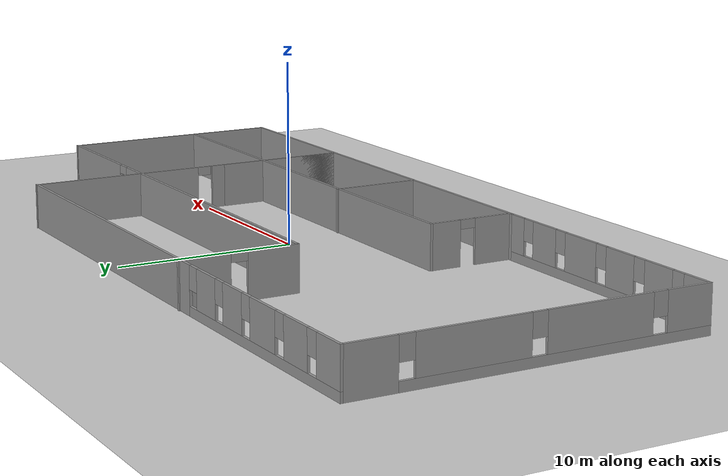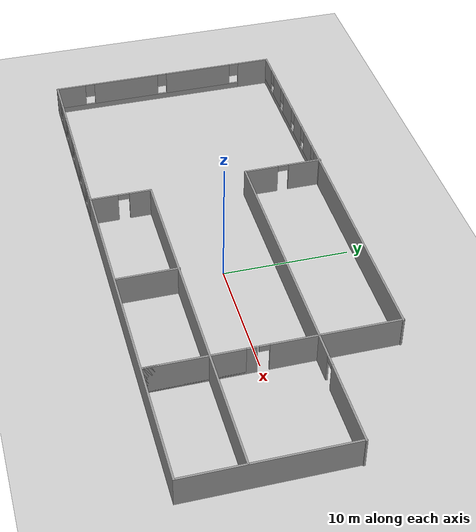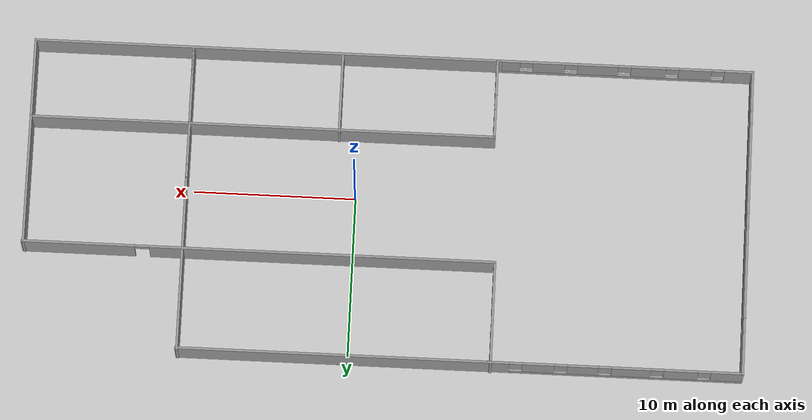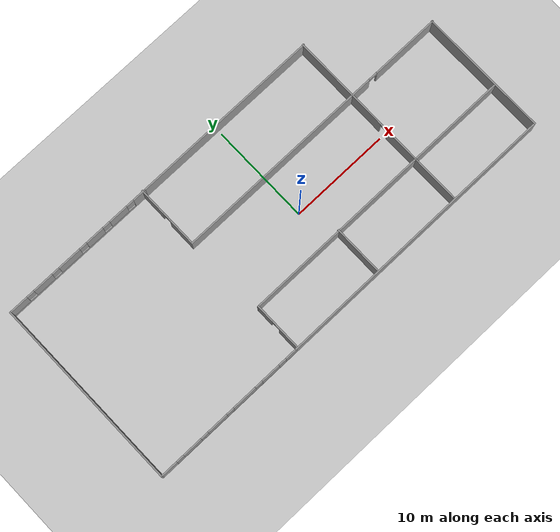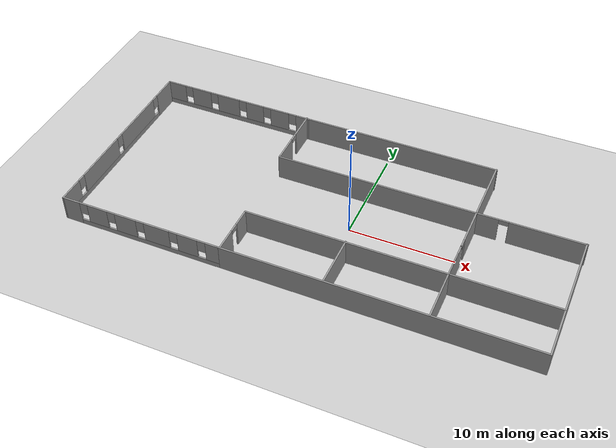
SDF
<sdf version="1.7">
 <world name="default">
  <light name="sun" type="directional">
   <pose>0 0 10 0 -0 0</pose>
   <diffuse>0.8 0.8 0.8 1</diffuse>
   <specular>0.2 0.2 0.2 1</specular>
   <attenuation>
    <range>1000</range>
    <constant>0.9</constant>
    <linear>0.01</linear>
    <quadratic>0.001</quadratic>
   </attenuation>
   <direction>-0.5 0.1 -0.9</direction>
   <spot><inner_angle>0</inner_angle><outer_angle>0</outer_angle><falloff>0</falloff></spot>
  </light>
  <model name="ground_plane">
   <static>1</static>
   <link name="link">
    <collision name="collision">
     <geometry><plane><normal>0 0 1</normal><size>100 100</size></plane></geometry>
     <surface>
      <contact><collide_bitmask>65535</collide_bitmask></contact>
      <friction><ode><mu>100</mu><mu2>50</mu2></ode></friction>
     </surface>
    </collision>
    <visual name="visual">
     <cast_shadows>0</cast_shadows>
     <geometry><plane><normal>0 0 1</normal><size>100 100</size></plane></geometry>
     <material>
      <script><uri>file://media/materials/scripts/gazebo.material</uri><name>Gazebo/Grey</name></script>
     </material>
    </visual>
   </link>
  </model>
  <gravity>0 0 -9.8</gravity>
  <magnetic_field>6e-06 2.3e-05 -4.2e-05</magnetic_field>
  <atmosphere type="adiabatic"/>
  <physics type="ode">
   <max_step_size>0.001</max_step_size>
   <real_time_factor>1</real_time_factor>
   <real_time_update_rate>1000</real_time_update_rate>
  </physics>
  <scene><ambient>0.4 0.4 0.4 1</ambient><background>0.7 0.7 0.7 1</background><shadows>1</shadows></scene>
  <spherical_coordinates>
   <surface_model>EARTH_WGS84</surface_model>
   <latitude_deg>0</latitude_deg>
   <longitude_deg>0</longitude_deg>
   <elevation>0</elevation>
   <heading_deg>0</heading_deg>
  </spherical_coordinates>
  <model name="first_tactic_model">
   <pose>-1.95828 0.93122 0 0 -0 0</pose>
   <link name="Wall_19">
    <collision name="Wall_19_Collision">
     <geometry><box><size>29 0.15 2.5</size></box></geometry>
     <pose>0 0 1.25 0 -0 0</pose>
    </collision>
    <visual name="Wall_19_Visual">
     <pose>0 0 1.25 0 -0 0</pose>
     <geometry><box><size>29 0.15 2.5</size></box></geometry>
     <material>
      <script><uri>file://media/materials/scripts/gazebo.material</uri><name>Gazebo/Grey</name></script>
      <ambient>1 1 1 1</ambient>
     </material>
     <meta><layer>0</layer></meta>
    </visual>
    <pose>7.7639 -9.58545 0 0 -0 3.14159</pose>
   </link>
   <link name="Wall_21">
    <pose>12.3851 -0.000286 0 0 -0 -1.5708</pose>
    <visual name="Wall_21_Visual_0">
     <pose>-4.62495 0 1.25 0 -0 0</pose>
     <geometry><box><size>10.0001 0.15 2.5</size></box></geometry>
     <material>
      <script><uri>file://media/materials/scripts/gazebo.material</uri><name>Gazebo/Grey</name></script>
      <ambient>1 1 1 1</ambient>
     </material>
     <meta><layer>0</layer></meta>
    </visual>
    <collision name="Wall_21_Collision_0">
     <geometry><box><size>10.0001 0.15 2.5</size></box></geometry>
     <pose>-4.62495 0 1.25 0 -0 0</pose>
    </collision>
    <visual name="Wall_21_Visual_1">
     <pose>5.45005 0 1.25 0 -0 0</pose>
     <geometry><box><size>8.3499 0.15 2.5</size></box></geometry>
     <material>
      <script><uri>file://media/materials/scripts/gazebo.material</uri><name>Gazebo/Grey</name></script>
      <ambient>1 1 1 1</ambient>
     </material>
     <meta><layer>0</layer></meta>
    </visual>
    <collision name="Wall_21_Collision_1">
     <geometry><box><size>8.3499 0.15 2.5</size></box></geometry>
     <pose>5.45005 0 1.25 0 -0 0</pose>
    </collision>
    <visual name="Wall_21_Visual_2">
     <pose>5.84998 0 1.25 0 -0 0</pose>
     <geometry><box><size>7.55004 0.15 2.5</size></box></geometry>
     <material>
      <script><uri>file://media/materials/scripts/gazebo.material</uri><name>Gazebo/Grey</name></script>
      <ambient>1 1 1 1</ambient>
     </material>
     <meta><layer>0</layer></meta>
    </visual>
    <collision name="Wall_21_Collision_2">
     <geometry><box><size>7.55004 0.15 2.5</size></box></geometry>
     <pose>5.84998 0 1.25 0 -0 0</pose>
    </collision>
    <visual name="Wall_21_Visual_3">
     <pose>0.77503 0 2.25 0 -0 0</pose>
     <geometry><box><size>0.799862 0.15 0.5</size></box></geometry>
     <material>
      <script><uri>file://media/materials/scripts/gazebo.material</uri><name>Gazebo/Grey</name></script>
      <ambient>1 1 1 1</ambient>
     </material>
     <meta><layer>0</layer></meta>
    </visual>
    <collision name="Wall_21_Collision_3">
     <geometry><box><size>0.799862 0.15 0.5</size></box></geometry>
     <pose>0.77503 0 2.25 0 -0 0</pose>
    </collision>
   </link>
   <link name="Wall_25">
    <pose>7.7111 3.23546 0 0 -0 0</pose>
    <visual name="Wall_25_Visual_0">
     <pose>-3.95283 0 1.25 0 -0 0</pose>
     <geometry><box><size>21.3443 0.15 2.5</size></box></geometry>
     <material>
      <script><uri>file://media/materials/scripts/gazebo.material</uri><name>Gazebo/Grey</name></script>
      <ambient>1 1 1 1</ambient>
     </material>
     <meta><layer>0</layer></meta>
    </visual>
    <collision name="Wall_25_Collision_0">
     <geometry><box><size>21.3443 0.15 2.5</size></box></geometry>
     <pose>-3.95283 0 1.25 0 -0 0</pose>
    </collision>
    <visual name="Wall_25_Visual_1">
     <pose>11.1222 0 1.25 0 -0 0</pose>
     <geometry><box><size>7.00566 0.15 2.5</size></box></geometry>
     <material>
      <script><uri>file://media/materials/scripts/gazebo.material</uri><name>Gazebo/Grey</name></script>
      <ambient>1 1 1 1</ambient>
     </material>
     <meta><layer>0</layer></meta>
    </visual>
    <collision name="Wall_25_Collision_1">
     <geometry><box><size>7.00566 0.15 2.5</size></box></geometry>
     <pose>11.1222 0 1.25 0 -0 0</pose>
    </collision>
    <visual name="Wall_25_Visual_2">
     <pose>7.16934 0 2.25 0 -0 0</pose>
     <geometry><box><size>0.9 0.15 0.5</size></box></geometry>
     <material>
      <script><uri>file://media/materials/scripts/gazebo.material</uri><name>Gazebo/Grey</name></script>
      <ambient>1 1 1 1</ambient>
     </material>
     <meta><layer>0</layer></meta>
    </visual>
    <collision name="Wall_25_Collision_2">
     <geometry><box><size>0.9 0.15 0.5</size></box></geometry>
     <pose>7.16934 0 2.25 0 -0 0</pose>
    </collision>
   </link>
   <link name="Wall_27">
    <collision name="Wall_27_Collision">
     <geometry><box><size>19.25 0.15 2.5</size></box></geometry>
     <pose>0 0 1.25 0 -0 0</pose>
    </collision>
    <visual name="Wall_27_Visual">
     <pose>0 0 1.25 0 -0 0</pose>
     <geometry><box><size>19.25 0.15 2.5</size></box></geometry>
     <material>
      <script><uri>file://media/materials/scripts/gazebo.material</uri><name>Gazebo/Grey</name></script>
      <ambient>1 1 1 1</ambient>
     </material>
     <meta><layer>0</layer></meta>
    </visual>
    <pose>2.8889 9.51455 0 0 -0 0</pose>
   </link>
   <link name="Wall_29">
    <collision name="Wall_29_Collision">
     <geometry><box><size>13 0.15 2.5</size></box></geometry>
     <pose>0 0 1.25 0 -0 0</pose>
    </collision>
    <visual name="Wall_29_Visual">
     <pose>0 0 1.25 0 -0 0</pose>
     <geometry><box><size>13 0.15 2.5</size></box></geometry>
     <material>
      <script><uri>file://media/materials/scripts/gazebo.material</uri><name>Gazebo/Grey</name></script>
      <ambient>1 1 1 1</ambient>
     </material>
     <meta><layer>0</layer></meta>
    </visual>
    <pose>22.1889 -3.16045 0 0 -0 1.5708</pose>
   </link>
   <link name="Wall_32">
    <collision name="Wall_32_Collision">
     <geometry><box><size>28.75 0.15 2.5</size></box></geometry>
     <pose>0 0 1.25 0 -0 0</pose>
    </collision>
    <visual name="Wall_32_Visual">
     <pose>0 0 1.25 0 -0 0</pose>
     <geometry><box><size>28.75 0.15 2.5</size></box></geometry>
     <material>
      <script><uri>file://media/materials/scripts/gazebo.material</uri><name>Gazebo/Grey</name></script>
      <ambient>1 1 1 1</ambient>
     </material>
     <meta><layer>0</layer></meta>
    </visual>
    <pose>7.84073 -4.70164 0 0 -0 3.14159</pose>
   </link>
   <link name="Wall_34">
    <pose>-14.4611 9.51455 0 0 -0 3.14159</pose>
    <visual name="Wall_34_Visual_0">
     <pose>-7.17951 0 1.25 0 -0 0</pose>
     <geometry><box><size>1.39099 0.15 2.5</size></box></geometry>
     <material>
      <script><uri>file://media/materials/scripts/gazebo.material</uri><name>Gazebo/Grey</name></script>
      <ambient>1 1 1 1</ambient>
     </material>
     <meta><layer>0</layer></meta>
    </visual>
    <collision name="Wall_34_Collision_0">
     <geometry><box><size>1.39099 0.15 2.5</size></box></geometry>
     <pose>-7.17951 0 1.25 0 -0 0</pose>
    </collision>
    <visual name="Wall_34_Visual_1">
     <pose>0.695494 0 0.25 0 -0 0</pose>
     <geometry><box><size>14.359 0.15 0.5</size></box></geometry>
     <material>
      <script><uri>file://media/materials/scripts/gazebo.material</uri><name>Gazebo/Grey</name></script>
      <ambient>1 1 1 1</ambient>
     </material>
     <meta><layer>0</layer></meta>
    </visual>
    <collision name="Wall_34_Collision_1">
     <geometry><box><size>14.359 0.15 0.5</size></box></geometry>
     <pose>0.695494 0 0.25 0 -0 0</pose>
    </collision>
    <visual name="Wall_34_Visual_2">
     <pose>-4.69963 0 1.5 0 -0 0</pose>
     <geometry><box><size>1.96876 0.15 2</size></box></geometry>
     <material>
      <script><uri>file://media/materials/scripts/gazebo.material</uri><name>Gazebo/Grey</name></script>
      <ambient>1 1 1 1</ambient>
     </material>
     <meta><layer>0</layer></meta>
    </visual>
    <collision name="Wall_34_Collision_2">
     <geometry><box><size>1.96876 0.15 2</size></box></geometry>
     <pose>-4.69963 0 1.5 0 -0 0</pose>
    </collision>
    <visual name="Wall_34_Visual_3">
     <pose>-1.96164 0 1.5 0 -0 0</pose>
     <geometry><box><size>1.90723 0.15 2</size></box></geometry>
     <material>
      <script><uri>file://media/materials/scripts/gazebo.material</uri><name>Gazebo/Grey</name></script>
      <ambient>1 1 1 1</ambient>
     </material>
     <meta><layer>0</layer></meta>
    </visual>
    <collision name="Wall_34_Collision_3">
     <geometry><box><size>1.90723 0.15 2</size></box></geometry>
     <pose>-1.96164 0 1.5 0 -0 0</pose>
    </collision>
    <visual name="Wall_34_Visual_4">
     <pose>0.991694 0 1.5 0 -0 0</pose>
     <geometry><box><size>2.39945 0.15 2</size></box></geometry>
     <material>
      <script><uri>file://media/materials/scripts/gazebo.material</uri><name>Gazebo/Grey</name></script>
      <ambient>1 1 1 1</ambient>
     </material>
     <meta><layer>0</layer></meta>
    </visual>
    <collision name="Wall_34_Collision_4">
     <geometry><box><size>2.39945 0.15 2</size></box></geometry>
     <pose>0.991694 0 1.5 0 -0 0</pose>
    </collision>
    <visual name="Wall_34_Visual_5">
     <pose>4.03732 0 1.5 0 -0 0</pose>
     <geometry><box><size>2.09181 0.15 2</size></box></geometry>
     <material>
      <script><uri>file://media/materials/scripts/gazebo.material</uri><name>Gazebo/Grey</name></script>
      <ambient>1 1 1 1</ambient>
     </material>
     <meta><layer>0</layer></meta>
    </visual>
    <collision name="Wall_34_Collision_5">
     <geometry><box><size>2.09181 0.15 2</size></box></geometry>
     <pose>4.03732 0 1.5 0 -0 0</pose>
    </collision>
    <visual name="Wall_34_Visual_6">
     <pose>6.87911 0 1.5 0 -0 0</pose>
     <geometry><box><size>1.99177 0.15 2</size></box></geometry>
     <material>
      <script><uri>file://media/materials/scripts/gazebo.material</uri><name>Gazebo/Grey</name></script>
      <ambient>1 1 1 1</ambient>
     </material>
     <meta><layer>0</layer></meta>
    </visual>
    <collision name="Wall_34_Collision_6">
     <geometry><box><size>1.99177 0.15 2</size></box></geometry>
     <pose>6.87911 0 1.5 0 -0 0</pose>
    </collision>
    <visual name="Wall_34_Visual_7">
     <pose>-6.08401 0 1.9 0 -0 0</pose>
     <geometry><box><size>0.8 0.15 1.2</size></box></geometry>
     <material>
      <script><uri>file://media/materials/scripts/gazebo.material</uri><name>Gazebo/Grey</name></script>
      <ambient>1 1 1 1</ambient>
     </material>
     <meta><layer>0</layer></meta>
    </visual>
    <collision name="Wall_34_Collision_7">
     <geometry><box><size>0.8 0.15 1.2</size></box></geometry>
     <pose>-6.08401 0 1.9 0 -0 0</pose>
    </collision>
    <visual name="Wall_34_Visual_8">
     <pose>-3.31526 0 1.9 0 -0 0</pose>
     <geometry><box><size>0.8 0.15 1.2</size></box></geometry>
     <material>
      <script><uri>file://media/materials/scripts/gazebo.material</uri><name>Gazebo/Grey</name></script>
      <ambient>1 1 1 1</ambient>
     </material>
     <meta><layer>0</layer></meta>
    </visual>
    <collision name="Wall_34_Collision_8">
     <geometry><box><size>0.8 0.15 1.2</size></box></geometry>
     <pose>-3.31526 0 1.9 0 -0 0</pose>
    </collision>
    <visual name="Wall_34_Visual_9">
     <pose>-0.60803 0 1.9 0 -0 0</pose>
     <geometry><box><size>0.8 0.15 1.2</size></box></geometry>
     <material>
      <script><uri>file://media/materials/scripts/gazebo.material</uri><name>Gazebo/Grey</name></script>
      <ambient>1 1 1 1</ambient>
     </material>
     <meta><layer>0</layer></meta>
    </visual>
    <collision name="Wall_34_Collision_9">
     <geometry><box><size>0.8 0.15 1.2</size></box></geometry>
     <pose>-0.60803 0 1.9 0 -0 0</pose>
    </collision>
    <visual name="Wall_34_Visual_10">
     <pose>2.59142 0 1.9 0 -0 0</pose>
     <geometry><box><size>0.8 0.15 1.2</size></box></geometry>
     <material>
      <script><uri>file://media/materials/scripts/gazebo.material</uri><name>Gazebo/Grey</name></script>
      <ambient>1 1 1 1</ambient>
     </material>
     <meta><layer>0</layer></meta>
    </visual>
    <collision name="Wall_34_Collision_10">
     <geometry><box><size>0.8 0.15 1.2</size></box></geometry>
     <pose>2.59142 0 1.9 0 -0 0</pose>
    </collision>
    <visual name="Wall_34_Visual_11">
     <pose>5.48323 0 1.9 0 -0 0</pose>
     <geometry><box><size>0.8 0.15 1.2</size></box></geometry>
     <material>
      <script><uri>file://media/materials/scripts/gazebo.material</uri><name>Gazebo/Grey</name></script>
      <ambient>1 1 1 1</ambient>
     </material>
     <meta><layer>0</layer></meta>
    </visual>
    <collision name="Wall_34_Collision_11">
     <geometry><box><size>0.8 0.15 1.2</size></box></geometry>
     <pose>5.48323 0 1.9 0 -0 0</pose>
    </collision>
   </link>
   <link name="Wall_35">
    <pose>-22.2611 -0.035455 0 0 -0 -1.5708</pose>
    <visual name="Wall_35_Visual_0">
     <pose>-8.24768 0 1.25 0 -0 0</pose>
     <geometry><box><size>2.75464 0.15 2.5</size></box></geometry>
     <material>
      <script><uri>file://media/materials/scripts/gazebo.material</uri><name>Gazebo/Grey</name></script>
      <ambient>1 1 1 1</ambient>
     </material>
     <meta><layer>0</layer></meta>
    </visual>
    <collision name="Wall_35_Collision_0">
     <geometry><box><size>2.75464 0.15 2.5</size></box></geometry>
     <pose>-8.24768 0 1.25 0 -0 0</pose>
    </collision>
    <visual name="Wall_35_Visual_1">
     <pose>1.37732 0 0.25 0 -0 0</pose>
     <geometry><box><size>16.4954 0.15 0.5</size></box></geometry>
     <material>
      <script><uri>file://media/materials/scripts/gazebo.material</uri><name>Gazebo/Grey</name></script>
      <ambient>1 1 1 1</ambient>
     </material>
     <meta><layer>0</layer></meta>
    </visual>
    <collision name="Wall_35_Collision_1">
     <geometry><box><size>16.4954 0.15 0.5</size></box></geometry>
     <pose>1.37732 0 0.25 0 -0 0</pose>
    </collision>
    <visual name="Wall_35_Visual_2">
     <pose>-3.14785 0 1.5 0 -0 0</pose>
     <geometry><box><size>5.84501 0.15 2</size></box></geometry>
     <material>
      <script><uri>file://media/materials/scripts/gazebo.material</uri><name>Gazebo/Grey</name></script>
      <ambient>1 1 1 1</ambient>
     </material>
     <meta><layer>0</layer></meta>
    </visual>
    <collision name="Wall_35_Collision_2">
     <geometry><box><size>5.84501 0.15 2</size></box></geometry>
     <pose>-3.14785 0 1.5 0 -0 0</pose>
    </collision>
    <visual name="Wall_35_Visual_3">
     <pose>3.43563 0 1.5 0 -0 0</pose>
     <geometry><box><size>5.72196 0.15 2</size></box></geometry>
     <material>
      <script><uri>file://media/materials/scripts/gazebo.material</uri><name>Gazebo/Grey</name></script>
      <ambient>1 1 1 1</ambient>
     </material>
     <meta><layer>0</layer></meta>
    </visual>
    <collision name="Wall_35_Collision_3">
     <geometry><box><size>5.72196 0.15 2</size></box></geometry>
     <pose>3.43563 0 1.5 0 -0 0</pose>
    </collision>
    <visual name="Wall_35_Visual_4">
     <pose>8.3608 0 1.5 0 -0 0</pose>
     <geometry><box><size>2.5284 0.15 2</size></box></geometry>
     <material>
      <script><uri>file://media/materials/scripts/gazebo.material</uri><name>Gazebo/Grey</name></script>
      <ambient>1 1 1 1</ambient>
     </material>
     <meta><layer>0</layer></meta>
    </visual>
    <collision name="Wall_35_Collision_4">
     <geometry><box><size>2.5284 0.15 2</size></box></geometry>
     <pose>8.3608 0 1.5 0 -0 0</pose>
    </collision>
    <visual name="Wall_35_Visual_5">
     <pose>-6.47036 0 1.9 0 -0 0</pose>
     <geometry><box><size>0.8 0.15 1.2</size></box></geometry>
     <material>
      <script><uri>file://media/materials/scripts/gazebo.material</uri><name>Gazebo/Grey</name></script>
      <ambient>1 1 1 1</ambient>
     </material>
     <meta><layer>0</layer></meta>
    </visual>
    <collision name="Wall_35_Collision_5">
     <geometry><box><size>0.8 0.15 1.2</size></box></geometry>
     <pose>-6.47036 0 1.9 0 -0 0</pose>
    </collision>
    <visual name="Wall_35_Visual_6">
     <pose>0.17465 0 1.9 0 -0 0</pose>
     <geometry><box><size>0.8 0.15 1.2</size></box></geometry>
     <material>
      <script><uri>file://media/materials/scripts/gazebo.material</uri><name>Gazebo/Grey</name></script>
      <ambient>1 1 1 1</ambient>
     </material>
     <meta><layer>0</layer></meta>
    </visual>
    <collision name="Wall_35_Collision_6">
     <geometry><box><size>0.8 0.15 1.2</size></box></geometry>
     <pose>0.17465 0 1.9 0 -0 0</pose>
    </collision>
    <visual name="Wall_35_Visual_7">
     <pose>6.6966 0 1.9 0 -0 0</pose>
     <geometry><box><size>0.8 0.15 1.2</size></box></geometry>
     <material>
      <script><uri>file://media/materials/scripts/gazebo.material</uri><name>Gazebo/Grey</name></script>
      <ambient>1 1 1 1</ambient>
     </material>
     <meta><layer>0</layer></meta>
    </visual>
    <collision name="Wall_35_Collision_7">
     <geometry><box><size>0.8 0.15 1.2</size></box></geometry>
     <pose>6.6966 0 1.9 0 -0 0</pose>
    </collision>
   </link>
   <link name="Wall_36">
    <pose>-14.4611 -9.58545 0 0 -0 0</pose>
    <visual name="Wall_36_Visual_0">
     <pose>-6.97141 0 1.25 0 -0 0</pose>
     <geometry><box><size>1.80719 0.15 2.5</size></box></geometry>
     <material>
      <script><uri>file://media/materials/scripts/gazebo.material</uri><name>Gazebo/Grey</name></script>
      <ambient>1 1 1 1</ambient>
     </material>
     <meta><layer>0</layer></meta>
    </visual>
    <collision name="Wall_36_Collision_0">
     <geometry><box><size>1.80719 0.15 2.5</size></box></geometry>
     <pose>-6.97141 0 1.25 0 -0 0</pose>
    </collision>
    <visual name="Wall_36_Visual_1">
     <pose>0.903594 0 0.25 0 -0 0</pose>
     <geometry><box><size>13.9428 0.15 0.5</size></box></geometry>
     <material>
      <script><uri>file://media/materials/scripts/gazebo.material</uri><name>Gazebo/Grey</name></script>
      <ambient>1 1 1 1</ambient>
     </material>
     <meta><layer>0</layer></meta>
    </visual>
    <collision name="Wall_36_Collision_1">
     <geometry><box><size>13.9428 0.15 0.5</size></box></geometry>
     <pose>0.903594 0 0.25 0 -0 0</pose>
    </collision>
    <visual name="Wall_36_Visual_2">
     <pose>-4.25267 0 1.5 0 -0 0</pose>
     <geometry><box><size>2.03028 0.15 2</size></box></geometry>
     <material>
      <script><uri>file://media/materials/scripts/gazebo.material</uri><name>Gazebo/Grey</name></script>
      <ambient>1 1 1 1</ambient>
     </material>
     <meta><layer>0</layer></meta>
    </visual>
    <collision name="Wall_36_Collision_2">
     <geometry><box><size>2.03028 0.15 2</size></box></geometry>
     <pose>-4.25267 0 1.5 0 -0 0</pose>
    </collision>
    <visual name="Wall_36_Visual_3">
     <pose>-1.36086 0 1.5 0 -0 0</pose>
     <geometry><box><size>2.15334 0.15 2</size></box></geometry>
     <material>
      <script><uri>file://media/materials/scripts/gazebo.material</uri><name>Gazebo/Grey</name></script>
      <ambient>1 1 1 1</ambient>
     </material>
     <meta><layer>0</layer></meta>
    </visual>
    <collision name="Wall_36_Collision_3">
     <geometry><box><size>2.15334 0.15 2</size></box></geometry>
     <pose>-1.36086 0 1.5 0 -0 0</pose>
    </collision>
    <visual name="Wall_36_Visual_4">
     <pose>1.77706 0 1.5 0 -0 0</pose>
     <geometry><box><size>2.52251 0.15 2</size></box></geometry>
     <material>
      <script><uri>file://media/materials/scripts/gazebo.material</uri><name>Gazebo/Grey</name></script>
      <ambient>1 1 1 1</ambient>
     </material>
     <meta><layer>0</layer></meta>
    </visual>
    <collision name="Wall_36_Collision_4">
     <geometry><box><size>2.52251 0.15 2</size></box></geometry>
     <pose>1.77706 0 1.5 0 -0 0</pose>
    </collision>
    <visual name="Wall_36_Visual_5">
     <pose>4.82269 0 1.5 0 -0 0</pose>
     <geometry><box><size>1.96876 0.15 2</size></box></geometry>
     <material>
      <script><uri>file://media/materials/scripts/gazebo.material</uri><name>Gazebo/Grey</name></script>
      <ambient>1 1 1 1</ambient>
     </material>
     <meta><layer>0</layer></meta>
    </visual>
    <collision name="Wall_36_Collision_5">
     <geometry><box><size>1.96876 0.15 2</size></box></geometry>
     <pose>4.82269 0 1.5 0 -0 0</pose>
    </collision>
    <visual name="Wall_36_Visual_6">
     <pose>7.24103 0 1.5 0 -0 0</pose>
     <geometry><box><size>1.26793 0.15 2</size></box></geometry>
     <material>
      <script><uri>file://media/materials/scripts/gazebo.material</uri><name>Gazebo/Grey</name></script>
      <ambient>1 1 1 1</ambient>
     </material>
     <meta><layer>0</layer></meta>
    </visual>
    <collision name="Wall_36_Collision_6">
     <geometry><box><size>1.26793 0.15 2</size></box></geometry>
     <pose>7.24103 0 1.5 0 -0 0</pose>
    </collision>
    <visual name="Wall_36_Visual_7">
     <pose>-5.66781 0 1.9 0 -0 0</pose>
     <geometry><box><size>0.8 0.15 1.2</size></box></geometry>
     <material>
      <script><uri>file://media/materials/scripts/gazebo.material</uri><name>Gazebo/Grey</name></script>
      <ambient>1 1 1 1</ambient>
     </material>
     <meta><layer>0</layer></meta>
    </visual>
    <collision name="Wall_36_Collision_7">
     <geometry><box><size>0.8 0.15 1.2</size></box></geometry>
     <pose>-5.66781 0 1.9 0 -0 0</pose>
    </collision>
    <visual name="Wall_36_Visual_8">
     <pose>-2.83753 0 1.9 0 -0 0</pose>
     <geometry><box><size>0.8 0.15 1.2</size></box></geometry>
     <material>
      <script><uri>file://media/materials/scripts/gazebo.material</uri><name>Gazebo/Grey</name></script>
      <ambient>1 1 1 1</ambient>
     </material>
     <meta><layer>0</layer></meta>
    </visual>
    <collision name="Wall_36_Collision_8">
     <geometry><box><size>0.8 0.15 1.2</size></box></geometry>
     <pose>-2.83753 0 1.9 0 -0 0</pose>
    </collision>
    <visual name="Wall_36_Visual_9">
     <pose>0.115807 0 1.9 0 -0 0</pose>
     <geometry><box><size>0.8 0.15 1.2</size></box></geometry>
     <material>
      <script><uri>file://media/materials/scripts/gazebo.material</uri><name>Gazebo/Grey</name></script>
      <ambient>1 1 1 1</ambient>
     </material>
     <meta><layer>0</layer></meta>
    </visual>
    <collision name="Wall_36_Collision_9">
     <geometry><box><size>0.8 0.15 1.2</size></box></geometry>
     <pose>0.115807 0 1.9 0 -0 0</pose>
    </collision>
    <visual name="Wall_36_Visual_10">
     <pose>3.43831 0 1.9 0 -0 0</pose>
     <geometry><box><size>0.8 0.15 1.2</size></box></geometry>
     <material>
      <script><uri>file://media/materials/scripts/gazebo.material</uri><name>Gazebo/Grey</name></script>
      <ambient>1 1 1 1</ambient>
     </material>
     <meta><layer>0</layer></meta>
    </visual>
    <collision name="Wall_36_Collision_10">
     <geometry><box><size>0.8 0.15 1.2</size></box></geometry>
     <pose>3.43831 0 1.9 0 -0 0</pose>
    </collision>
    <visual name="Wall_36_Visual_11">
     <pose>6.20707 0 1.9 0 -0 0</pose>
     <geometry><box><size>0.8 0.15 1.2</size></box></geometry>
     <material>
      <script><uri>file://media/materials/scripts/gazebo.material</uri><name>Gazebo/Grey</name></script>
      <ambient>1 1 1 1</ambient>
     </material>
     <meta><layer>0</layer></meta>
    </visual>
    <collision name="Wall_36_Collision_11">
     <geometry><box><size>0.8 0.15 1.2</size></box></geometry>
     <pose>6.20707 0 1.9 0 -0 0</pose>
    </collision>
   </link>
   <link name="Wall_40">
    <collision name="Wall_40_Collision">
     <geometry><box><size>5 0.15 2.5</size></box></geometry>
     <pose>0 0 1.25 0 -0 0</pose>
    </collision>
    <visual name="Wall_40_Visual">
     <pose>0 0 1.25 0 -0 0</pose>
     <geometry><box><size>5 0.15 2.5</size></box></geometry>
     <material>
      <script><uri>file://media/materials/scripts/gazebo.material</uri><name>Gazebo/Grey</name></script>
      <ambient>1 1 1 1</ambient>
     </material>
     <meta><layer>0</layer></meta>
    </visual>
    <pose>3.12862 -7.06511 0 0 -0 -1.5708</pose>
   </link>
   <link name="Wall_42">
    <pose>-6.8389 6.41046 0 0 -0 1.5708</pose>
    <visual name="Wall_42_Visual_0">
     <pose>-1.83777 0 1.25 0 -0 0</pose>
     <geometry><box><size>2.82445 0.15 2.5</size></box></geometry>
     <material>
      <script><uri>file://media/materials/scripts/gazebo.material</uri><name>Gazebo/Grey</name></script>
      <ambient>1 1 1 1</ambient>
     </material>
     <meta><layer>0</layer></meta>
    </visual>
    <collision name="Wall_42_Collision_0">
     <geometry><box><size>2.82445 0.15 2.5</size></box></geometry>
     <pose>-1.83777 0 1.25 0 -0 0</pose>
    </collision>
    <visual name="Wall_42_Visual_1">
     <pose>1.86223 0 1.25 0 -0 0</pose>
     <geometry><box><size>2.77555 0.15 2.5</size></box></geometry>
     <material>
      <script><uri>file://media/materials/scripts/gazebo.material</uri><name>Gazebo/Grey</name></script>
      <ambient>1 1 1 1</ambient>
     </material>
     <meta><layer>0</layer></meta>
    </visual>
    <collision name="Wall_42_Collision_1">
     <geometry><box><size>2.77555 0.15 2.5</size></box></geometry>
     <pose>1.86223 0 1.25 0 -0 0</pose>
    </collision>
    <visual name="Wall_42_Visual_2">
     <pose>0.024449 0 2.25 0 -0 0</pose>
     <geometry><box><size>0.9 0.15 0.5</size></box></geometry>
     <material>
      <script><uri>file://media/materials/scripts/gazebo.material</uri><name>Gazebo/Grey</name></script>
      <ambient>1 1 1 1</ambient>
     </material>
     <meta><layer>0</layer></meta>
    </visual>
    <collision name="Wall_42_Collision_2">
     <geometry><box><size>0.9 0.15 0.5</size></box></geometry>
     <pose>0.024449 0 2.25 0 -0 0</pose>
    </collision>
   </link>
   <link name="Wall_44">
    <pose>-6.45927 -7.12664 0 0 -0 -1.5708</pose>
    <visual name="Wall_44_Visual_0">
     <pose>-1.58 0 1.25 0 -0 0</pose>
     <geometry><box><size>1.84 0.15 2.5</size></box></geometry>
     <material>
      <script><uri>file://media/materials/scripts/gazebo.material</uri><name>Gazebo/Grey</name></script>
      <ambient>1 1 1 1</ambient>
     </material>
     <meta><layer>0</layer></meta>
    </visual>
    <collision name="Wall_44_Collision_0">
     <geometry><box><size>1.84 0.15 2.5</size></box></geometry>
     <pose>-1.58 0 1.25 0 -0 0</pose>
    </collision>
    <visual name="Wall_44_Visual_1">
     <pose>1.37 0 1.25 0 -0 0</pose>
     <geometry><box><size>2.26 0.15 2.5</size></box></geometry>
     <material>
      <script><uri>file://media/materials/scripts/gazebo.material</uri><name>Gazebo/Grey</name></script>
      <ambient>1 1 1 1</ambient>
     </material>
     <meta><layer>0</layer></meta>
    </visual>
    <collision name="Wall_44_Collision_1">
     <geometry><box><size>2.26 0.15 2.5</size></box></geometry>
     <pose>1.37 0 1.25 0 -0 0</pose>
    </collision>
    <visual name="Wall_44_Visual_2">
     <pose>-0.209996 0 2.25 0 -0 0</pose>
     <geometry><box><size>0.9 0.15 0.5</size></box></geometry>
     <material>
      <script><uri>file://media/materials/scripts/gazebo.material</uri><name>Gazebo/Grey</name></script>
      <ambient>1 1 1 1</ambient>
     </material>
     <meta><layer>0</layer></meta>
    </visual>
    <collision name="Wall_44_Collision_2">
     <geometry><box><size>0.9 0.15 0.5</size></box></geometry>
     <pose>-0.209996 0 2.25 0 -0 0</pose>
    </collision>
   </link>
   <static>1</static>
  </model>
 </world>
</sdf>
